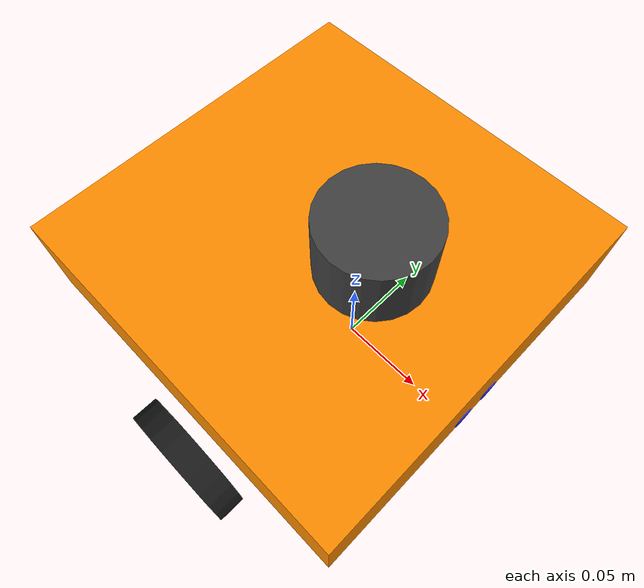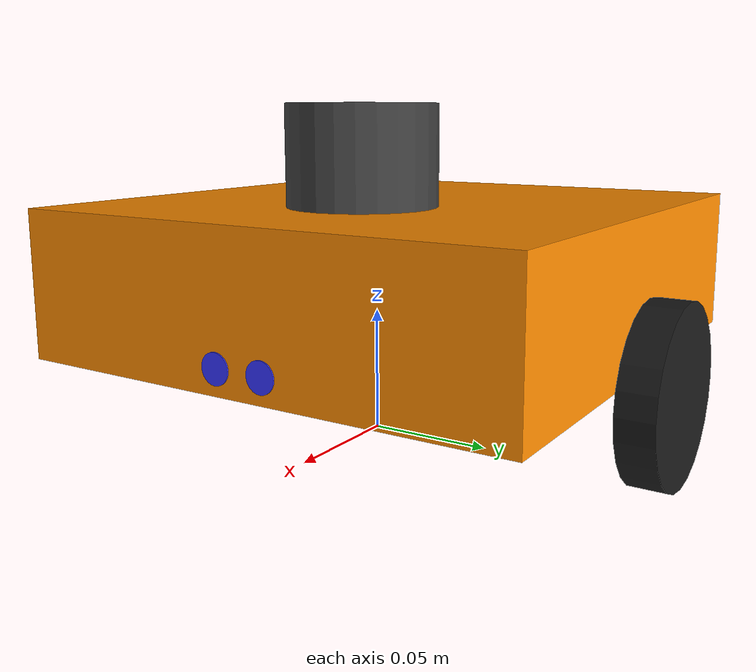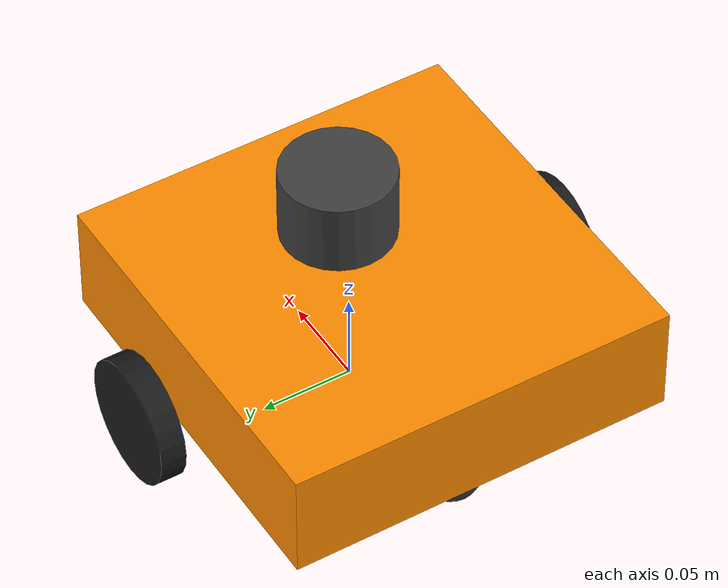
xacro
<?xml version="1.0"?>
<robot xmlns:xacro="http://www.ros.org/wiki/xacro" name="mobo_bot">

    <xacro:arg name="use_simulation" default="false"/>

    <xacro:macro name="inertial_sphere" params="mass radius *origin">
        <inertial>
            <xacro:insert_block name="origin"/>
            <mass value="${mass}" />
            <inertia ixx="${(2/5) * mass * (radius*radius)}" ixy="0.0" ixz="0.0"
                    iyy="${(2/5) * mass * (radius*radius)}" iyz="0.0"
                    izz="${(2/5) * mass * (radius*radius)}" />
        </inertial>
    </xacro:macro>

    <xacro:macro name="inertial_box" params="mass x y z *origin">
        <inertial>
            <xacro:insert_block name="origin"/>
            <mass value="${mass}" />
            <inertia ixx="${(1/12) * mass * (y*y+z*z)}" ixy="0.0" ixz="0.0"
                    iyy="${(1/12) * mass * (x*x+z*z)}" iyz="0.0"
                    izz="${(1/12) * mass * (x*x+y*y)}" />
        </inertial>
    </xacro:macro>

    <xacro:macro name="inertial_cylinder" params="mass length radius *origin">
        <inertial>
            <xacro:insert_block name="origin"/>
            <mass value="${mass}" />
            <inertia ixx="${(1/12) * mass * (3*radius*radius + length*length)}" ixy="0.0" ixz="0.0"
                    iyy="${(1/12) * mass * (3*radius*radius + length*length)}" iyz="0.0"
                    izz="${(1/2) * mass * (radius*radius)}" />
        </inertial>
    </xacro:macro>

    <material name="orange">
        <color rgba="1 0.55 0 1"/>
    </material>

    <material name="black">
        <color rgba="0.1 0.1 0.1 1"/>
    </material>

    <material name="silver">
        <color rgba="0.6 0.6 0.6 1"/>
    </material>

    <xacro:property name="chassis_length" value="0.21"/>
    <xacro:property name="chassis_width" value="0.21"/>
    <xacro:property name="chassis_height" value="0.06"/>
    <xacro:property name="chassis_mass" value="2.0"/>

    <xacro:property name="wheel_seperation" value="0.24"/>
    <xacro:property name="wheel_radius" value="0.0335"/>
    <xacro:property name="wheel_width" value="0.014"/>
    <xacro:property name="wheel_mass" value="0.08"/>

    <xacro:property name="castor_wheel_radius" value="${wheel_radius}"/>
    <xacro:property name="castor_wheel_mass" value="0.04"/>

    <link name="base_link">
    </link>

    <joint name="chassis_joint" type="fixed">
        <parent link="base_link"/>
        <child link="chassis"/>
        <origin xyz="0 0 ${wheel_radius}"/>
    </joint>

    <link name="chassis">
        <visual>
          <origin xyz="-0.02 0 ${chassis_height/2}" rpy="0 0 0"/>
          <geometry>
              <box size="${chassis_length} ${chassis_width} ${chassis_height}"/>
          </geometry>
          <material name="orange"/>
        </visual>
        <collision>
           <origin xyz="-0.02 0 ${chassis_height/2}" rpy="0 0 0"/>
            <geometry>
                <box size="${chassis_length} ${chassis_width} ${chassis_height}"/>
            </geometry>
        </collision>
        <xacro:inertial_box mass="${chassis_mass}" x="${chassis_length}" y="${chassis_width}" z="${chassis_height}">
            <origin xyz="-0.02 0 ${chassis_height/2}" rpy="0 0 0"/>
        </xacro:inertial_box>
    </link>

    <joint name="left_wheel_joint" type="continuous">
      <parent link="chassis"/>
      <child link="left_wheel"/>
      <origin xyz="0 ${wheel_seperation/2} 0" rpy="${-pi/2} 0 0"/>
      <axis xyz="0 0 1"/>
    </joint>

    <link name="left_wheel">
      <visual>
          <origin xyz="0 0 0" rpy="0 0 0"/>
          <geometry>
              <cylinder radius="${wheel_radius}" length="${wheel_width}"/>
          </geometry>
          <material name="black"/>
      </visual>
      <collision>
      <origin xyz="0 0 0" rpy="0 0 0"/>
          <geometry>
              <cylinder radius="${wheel_radius}" length="${wheel_width}"/>
          </geometry>
      </collision>
      <xacro:inertial_cylinder mass="${wheel_mass}" length="${wheel_width}" radius="${wheel_radius}">
          <origin xyz="0 0 0" rpy="0 0 0"/>
      </xacro:inertial_cylinder>
    </link>

    <xacro:if value="$(arg use_simulation)">
        <gazebo reference="left_wheel">
            <mu1>1.0</mu1>
            <mu2>1.0</mu2>
        </gazebo>
    </xacro:if>

    <joint name="right_wheel_joint" type="continuous">
      <parent link="chassis"/>
      <child link="right_wheel"/>
      <origin xyz="0 ${-wheel_seperation/2} 0" rpy="${-pi/2} 0 0"/>
      <axis xyz="0 0 1"/>
    </joint>

    <link name="right_wheel">
      <visual>
          <origin xyz="0 0 0" rpy="0 0 0"/>
          <geometry>
              <cylinder radius="${wheel_radius}" length="${wheel_width}"/>
          </geometry>
          <material name="black"/>
      </visual>
      <collision>
      <origin xyz="0 0 0" rpy="0 0 0"/>
          <geometry>
              <cylinder radius="${wheel_radius}" length="${wheel_width}"/>
          </geometry>
      </collision>
      <xacro:inertial_cylinder mass="${wheel_mass}" length="${wheel_width}" radius="${wheel_radius}">
          <origin xyz="0 0 0" rpy="0 0 0"/>
      </xacro:inertial_cylinder>
    </link>

    <xacro:if value="$(arg use_simulation)">
        <gazebo reference="right_wheel">
            <mu1>1.0</mu1>
            <mu2>1.0</mu2>
        </gazebo>
    </xacro:if>

    <joint name="castor_wheel_joint" type="fixed">
        <parent link="base_link"/>
        <child link="castor_wheel"/>
        <origin xyz="-0.095 0 ${castor_wheel_radius/2}"/>
    </joint>

    <link name="castor_wheel">
        <visual>
            <origin xyz="0 0 0" rpy="0 0 0"/>
            <geometry>
                <sphere radius="${castor_wheel_radius/2}" />
            </geometry>
            <material name="grey">
                <color rgba="0.25 0.25 0.25 1"/>
            </material>
        </visual>
        <collision>
           <origin xyz="0 0 0" rpy="0 0 0"/>
            <geometry>
                <sphere radius="${castor_wheel_radius/2}" />
            </geometry>
        </collision>
        <xacro:inertial_sphere mass="${castor_wheel_mass}" radius="${castor_wheel_radius/2}">
            <origin xyz="0 0 0" rpy="0 0 0"/>
        </xacro:inertial_sphere>
    </link>

    <xacro:if value="$(arg use_simulation)">
        <gazebo reference="castor_wheel">
            <mu1>0.001</mu1>
            <mu2>0.001</mu2>
        </gazebo>
    </xacro:if>

    <joint name="imu_joint" type="fixed">
        <parent link="chassis"/>
        <child link="imu"/>
        <origin xyz="0 0 ${chassis_height}"/>
    </joint>

    <link name="imu">
    </link>

    <xacro:if value="$(arg use_simulation)">
        <gazebo reference="imu">
            <sensor name="imu" type="imu">
              <ignition_frame_id>imu</ignition_frame_id>
              <plugin filename="ignition-gazebo-imu-system" name="ignition::gazebo::systems::Imu">
              </plugin>

              <topic>imu/data</topic>
              <always_on>true</always_on>
              <update_rate>10</update_rate>
              <visualize>true</visualize>
              <imu>
                <angular_velocity>
                  <x>
                    <noise type="gaussian">
                      <mean>0.0</mean>
                      <stddev>2e-4</stddev>
                      <bias_mean>0.0000075</bias_mean>
                      <bias_stddev>0.0000008</bias_stddev>
                    </noise>
                  </x>
                  <y>
                    <noise type="gaussian">
                      <mean>0.0</mean>
                      <stddev>2e-4</stddev>
                      <bias_mean>0.0000075</bias_mean>
                      <bias_stddev>0.0000008</bias_stddev>
                    </noise>
                  </y>
                  <z>
                    <noise type="gaussian">
                      <mean>0.0</mean>
                      <stddev>2e-4</stddev>
                      <bias_mean>0.0000075</bias_mean>
                      <bias_stddev>0.0000008</bias_stddev>
                    </noise>
                  </z>
                </angular_velocity>
                <linear_acceleration>
                  <x>
                    <noise type="gaussian">
                      <mean>0.0</mean>
                      <stddev>1.7e-2</stddev>
                      <bias_mean>0.1</bias_mean>
                      <bias_stddev>0.001</bias_stddev>
                    </noise>
                  </x>
                  <y>
                    <noise type="gaussian">
                      <mean>0.0</mean>
                      <stddev>1.7e-2</stddev>
                      <bias_mean>0.1</bias_mean>
                      <bias_stddev>0.001</bias_stddev>
                    </noise>
                  </y>
                  <z>
                    <noise type="gaussian">
                      <mean>0.0</mean>
                      <stddev>1.7e-2</stddev>
                      <bias_mean>0.1</bias_mean>
                      <bias_stddev>0.001</bias_stddev>
                    </noise>
                  </z>
                </linear_acceleration>
              </imu>
            </sensor>
        </gazebo>
    </xacro:if>

    <joint name="sonar_joint" type="fixed">
        <parent link="chassis"/>
        <child link="sonar"/>
        <origin xyz="0.0825 0 ${chassis_height/6}" rpy="0 0 0"/>
    </joint>

    <link name="sonar">
        <visual>
            <origin xyz="0 0.01 0" rpy="0 ${pi/2} 0"/>
            <geometry>
                <cylinder radius="0.006" length="0.006"/>
            </geometry>
            <material name="blue">
                <color rgba="0.2 0.2 1 1"/>
            </material>
        </visual>
        <collision>
            <origin xyz="0 0.01 0" rpy="0 ${pi/2} 0"/>
            <geometry>
                <cylinder radius="0.006" length="0.006"/>
            </geometry>
        </collision>

        <visual>
            <origin xyz="0 -0.01 0" rpy="0 ${pi/2} 0"/>
            <geometry>
                <cylinder radius="0.006" length="0.006"/>
            </geometry>
            <material name="blue">
                <color rgba="0.2 0.2 1 1"/>
            </material>
        </visual>
        <collision>
            <origin xyz="0 -0.01 0" rpy="0 ${pi/2} 0"/>
            <geometry>
                <cylinder radius="0.006" length="0.006"/>
            </geometry>
        </collision>

        <xacro:inertial_cylinder mass="0.005" length="0.006" radius="0.006">
            <origin xyz="0 0.01 0" rpy="0 ${pi/2} 0"/>
        </xacro:inertial_cylinder>
    </link>

    <xacro:property name="lidar_z_offset" value="0.04"/>

    <joint name="lidar_joint" type="fixed">
        <parent link="chassis"/>
        <child link="lidar"/>
        <origin xyz="0.01 0 ${chassis_height+lidar_z_offset}" rpy="0 0 0"/>
    </joint>

    <link name="lidar">
        <visual>
            <origin xyz="0 0 -0.02"/>
            <geometry>
                <cylinder radius="0.03" length="0.04"/>
            </geometry>
            <material name="grey">
                <color rgba="0.25 0.25 0.25 1"/>
            </material>
        </visual>
        <collision>
            <origin xyz="0 0 -0.02"/>
            <geometry>
                <cylinder radius="0.03" length="0.04"/>
            </geometry>
        </collision>
        <xacro:inertial_cylinder mass="0.1" length="0.04" radius="0.03">
            <origin xyz="0 0 -0.02" rpy="0 0 0"/>
        </xacro:inertial_cylinder>
    </link>

    <xacro:if value="$(arg use_simulation)">
      <gazebo reference="lidar">
        <sensor name="lidar" type="gpu_lidar">
          <pose> 0 0 0 0 0 0 </pose>
          <ignition_frame_id>lidar</ignition_frame_id>
          <topic>lidar/scan</topic>
          <always_on>true</always_on>
          <visualize>true</visualize>
          <update_rate>10</update_rate>
          <ray>
            <scan>
                <horizontal>
                    <samples>360</samples>
                    <min_angle>${-pi*2}</min_angle>
                    <max_angle>${pi*2}</max_angle>
                </horizontal>
            </scan>
            <range>
                <min>0.1</min>
                <max>10.0</max>
            </range>
          </ray>
        </sensor>
      </gazebo>
    </xacro:if>

    <xacro:if value="$(arg use_simulation)">
        <xacro:include filename="$(find mobo_bot_description)/urdf/controllers/gazebo_control.xacro" />
    </xacro:if>
    <xacro:unless value="$(arg use_simulation)">
        <xacro:include filename="$(find mobo_bot_description)/urdf/controllers/epmc_ros2_control.xacro" />
    </xacro:unless>

</robot>
